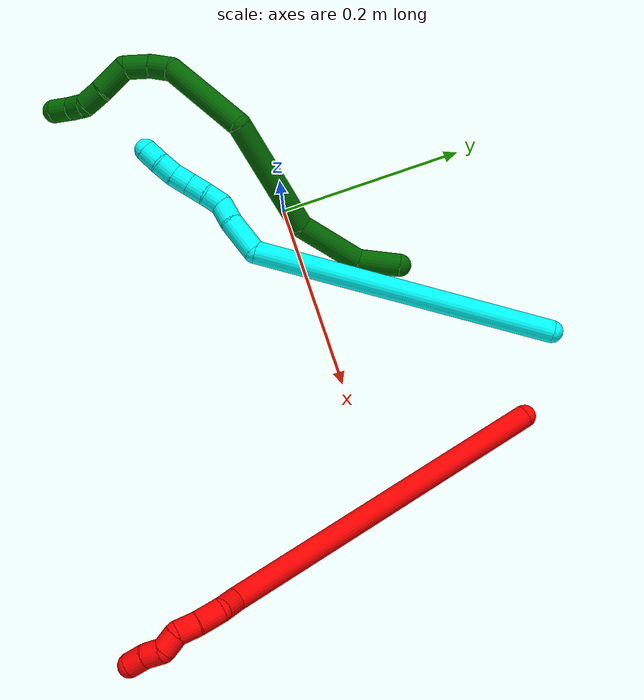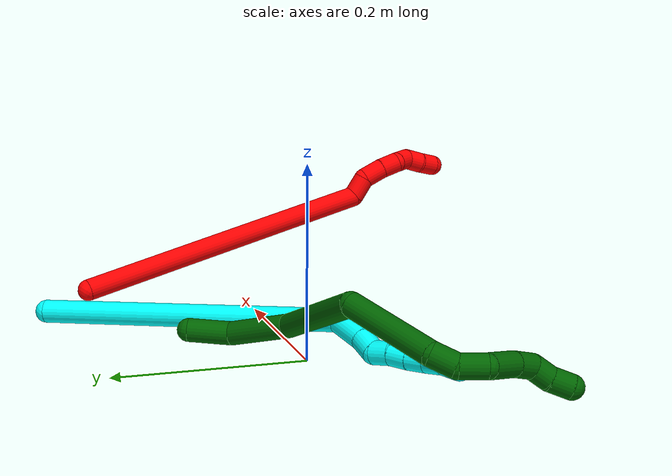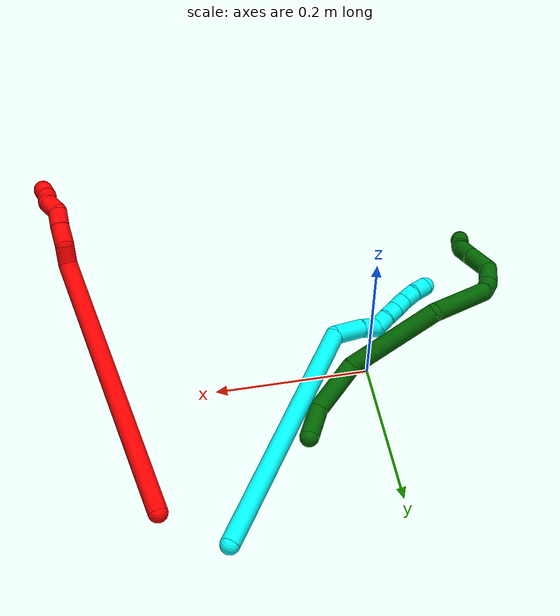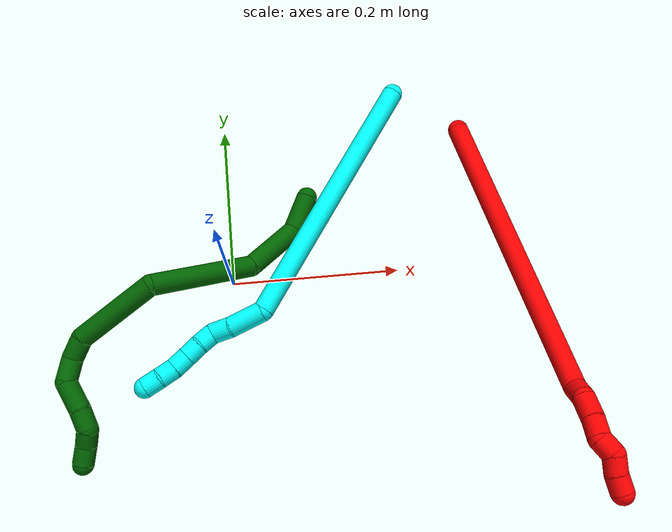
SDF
<sdf version="1.7">
 <world name="default">
  <model name="bin">
   <static>1</static>
   <link name="bottom">
    <collision name="collision-bottom">
     <pose>0 0 -0.01 0 -0 0</pose>
     <geometry><box><size>0.8 0.6 0.02</size></box></geometry>
     <surface>
      <friction><ode><mu>100</mu><mu2>100</mu2></ode></friction>
      <contact><collide_bitmask>65535</collide_bitmask></contact>
     </surface>
    </collision>
   </link>
   <link name="west_wall">
    <collision name="collision-west_wall">
     <pose>-0.41 0 0.1 0 -0 0</pose>
     <geometry><box><size>0.02 0.6 0.2</size></box></geometry>
     <surface>
      <friction><ode><mu>100</mu><mu2>100</mu2></ode></friction>
      <contact><collide_bitmask>65535</collide_bitmask></contact>
     </surface>
    </collision>
   </link>
   <link name="east_wall">
    <collision name="collision-east_wall">
     <pose>0.41 0 0.1 0 -0 0</pose>
     <geometry><box><size>0.02 0.6 0.2</size></box></geometry>
     <surface>
      <friction><ode><mu>100</mu><mu2>100</mu2></ode></friction>
      <contact><collide_bitmask>65535</collide_bitmask></contact>
     </surface>
    </collision>
   </link>
   <link name="south_wall">
    <collision name="collision-south_wall">
     <pose>0 -0.31 0.1 0 -0 0</pose>
     <geometry><box><size>0.8 0.02 0.2</size></box></geometry>
     <surface>
      <friction><ode><mu>100</mu><mu2>100</mu2></ode></friction>
      <contact><collide_bitmask>65535</collide_bitmask></contact>
     </surface>
    </collision>
   </link>
   <link name="north_wall">
    <collision name="collision-north_wall">
     <pose>0 0.31 0.1 0 -0 0</pose>
     <geometry><box><size>0.8 0.02 0.2</size></box></geometry>
     <surface>
      <friction><ode><mu>100</mu><mu2>100</mu2></ode></friction>
      <contact><collide_bitmask>65535</collide_bitmask></contact>
     </surface>
    </collision>
   </link>
  </model>
  <model name="2">
   <static>0</static>
   <link name="2">
    <collision name="collision-cylinder-e_1_1_4">
     <pose>0.073476 -0.110008 0.12536 0.720267 0.414965 0.158208</pose>
     <geometry><cylinder><radius>0.0125</radius><length>0.364503</length></cylinder></geometry>
     <surface>
      <friction><ode><mu>1.16</mu><mu2>1.16</mu2><slip1>0</slip1><slip2>0</slip2></ode></friction>
      <contact><ode><kp>1e+06</kp><kd>1</kd><max_vel>0</max_vel><min_depth>0.001</min_depth></ode></contact>
     </surface>
    </collision>
    <visual name="visual-cylinder-e_1_1_4">
     <pose>0.073476 -0.110008 0.12536 0.720267 0.414965 0.158208</pose>
     <geometry><cylinder><radius>0.0125</radius><length>0.364503</length></cylinder></geometry>
     <material><ambient>1 0 0 1</ambient></material>
    </visual>
    <collision name="collision-cylinder-e_2_4_5">
     <pose>0.147251 -0.220273 0.263848 0.019518 0.022736 0.000222</pose>
     <geometry><cylinder><radius>0.0125</radius><length>0.026268</length></cylinder></geometry>
     <surface>
      <friction><ode><mu>1.16</mu><mu2>1.16</mu2><slip1>0</slip1><slip2>0</slip2></ode></friction>
      <contact><ode><kp>1e+06</kp><kd>1</kd><max_vel>0</max_vel><min_depth>0.001</min_depth></ode></contact>
     </surface>
    </collision>
    <visual name="visual-cylinder-e_2_4_5">
     <pose>0.147251 -0.220273 0.263848 0.019518 0.022736 0.000222</pose>
     <geometry><cylinder><radius>0.0125</radius><length>0.026268</length></cylinder></geometry>
     <material><ambient>1 0 0 1</ambient></material>
    </visual>
    <collision name="collision-cylinder-e_3_5_6">
     <pose>0.151189 -0.227043 0.288011 0.533239 0.276725 0.076029</pose>
     <geometry><cylinder><radius>0.0125</radius><length>0.026641</length></cylinder></geometry>
     <surface>
      <friction><ode><mu>1.16</mu><mu2>1.16</mu2><slip1>0</slip1><slip2>0</slip2></ode></friction>
      <contact><ode><kp>1e+06</kp><kd>1</kd><max_vel>0</max_vel><min_depth>0.001</min_depth></ode></contact>
     </surface>
    </collision>
    <visual name="visual-cylinder-e_3_5_6">
     <pose>0.151189 -0.227043 0.288011 0.533239 0.276725 0.076029</pose>
     <geometry><cylinder><radius>0.0125</radius><length>0.026641</length></cylinder></geometry>
     <material><ambient>1 0 0 1</ambient></material>
    </visual>
    <collision name="collision-cylinder-e_4_6_7">
     <pose>0.157369 -0.240131 0.307593 0.655674 0.231397 0.079012</pose>
     <geometry><cylinder><radius>0.0125</radius><length>0.022159</length></cylinder></geometry>
     <surface>
      <friction><ode><mu>1.16</mu><mu2>1.16</mu2><slip1>0</slip1><slip2>0</slip2></ode></friction>
      <contact><ode><kp>1e+06</kp><kd>1</kd><max_vel>0</max_vel><min_depth>0.001</min_depth></ode></contact>
     </surface>
    </collision>
    <visual name="visual-cylinder-e_4_6_7">
     <pose>0.157369 -0.240131 0.307593 0.655674 0.231397 0.079012</pose>
     <geometry><cylinder><radius>0.0125</radius><length>0.022159</length></cylinder></geometry>
     <material><ambient>1 0 0 1</ambient></material>
    </visual>
    <collision name="collision-cylinder-e_5_7_8">
     <pose>0.167388 -0.251357 0.321259 0.737608 0.824425 0.334831</pose>
     <geometry><cylinder><radius>0.0125</radius><length>0.020371</length></cylinder></geometry>
     <surface>
      <friction><ode><mu>1.16</mu><mu2>1.16</mu2><slip1>0</slip1><slip2>0</slip2></ode></friction>
      <contact><ode><kp>1e+06</kp><kd>1</kd><max_vel>0</max_vel><min_depth>0.001</min_depth></ode></contact>
     </surface>
    </collision>
    <visual name="visual-cylinder-e_5_7_8">
     <pose>0.167388 -0.251357 0.321259 0.737608 0.824425 0.334831</pose>
     <geometry><cylinder><radius>0.0125</radius><length>0.020371</length></cylinder></geometry>
     <material><ambient>1 0 0 1</ambient></material>
    </visual>
    <collision name="collision-cylinder-e_6_8_9">
     <pose>0.178291 -0.26506 0.328903 1.29875 0.349541 0.266524</pose>
     <geometry><cylinder><radius>0.0125</radius><length>0.020005</length></cylinder></geometry>
     <surface>
      <friction><ode><mu>1.16</mu><mu2>1.16</mu2><slip1>0</slip1><slip2>0</slip2></ode></friction>
      <contact><ode><kp>1e+06</kp><kd>1</kd><max_vel>0</max_vel><min_depth>0.001</min_depth></ode></contact>
     </surface>
    </collision>
    <visual name="visual-cylinder-e_6_8_9">
     <pose>0.178291 -0.26506 0.328903 1.29875 0.349541 0.266524</pose>
     <geometry><cylinder><radius>0.0125</radius><length>0.020005</length></cylinder></geometry>
     <material><ambient>1 0 0 1</ambient></material>
    </visual>
    <collision name="collision-cylinder-e_7_9_2">
     <pose>0.186893 -0.282211 0.334281 1.23216 0.542522 0.388841</pose>
     <geometry><cylinder><radius>0.0125</radius><length>0.020053</length></cylinder></geometry>
     <surface>
      <friction><ode><mu>1.16</mu><mu2>1.16</mu2><slip1>0</slip1><slip2>0</slip2></ode></friction>
      <contact><ode><kp>1e+06</kp><kd>1</kd><max_vel>0</max_vel><min_depth>0.001</min_depth></ode></contact>
     </surface>
    </collision>
    <visual name="visual-cylinder-e_7_9_2">
     <pose>0.186893 -0.282211 0.334281 1.23216 0.542522 0.388841</pose>
     <geometry><cylinder><radius>0.0125</radius><length>0.020053</length></cylinder></geometry>
     <material><ambient>1 0 0 1</ambient></material>
    </visual>
    <collision name="collision-sphere-2">
     <pose>0.19207 -0.29031 0.337133 0 -0 0</pose>
     <geometry><sphere><radius>0.0125</radius></sphere></geometry>
     <surface>
      <friction><ode><mu>1.16</mu><mu2>1.16</mu2><slip1>0</slip1><slip2>0</slip2></ode></friction>
      <contact><ode><kp>1e+06</kp><kd>1</kd><max_vel>0</max_vel><min_depth>0.001</min_depth></ode></contact>
     </surface>
    </collision>
    <visual name="visual-sphere-2">
     <pose>0.19207 -0.29031 0.337133 0 -0 0</pose>
     <geometry><sphere><radius>0.0125</radius></sphere></geometry>
     <material><ambient>1 0 0 1</ambient></material>
    </visual>
    <collision name="collision-sphere-9">
     <pose>0.181716 -0.274112 0.331428 0 -0 0</pose>
     <geometry><sphere><radius>0.0125</radius></sphere></geometry>
     <surface>
      <friction><ode><mu>1.16</mu><mu2>1.16</mu2><slip1>0</slip1><slip2>0</slip2></ode></friction>
      <contact><ode><kp>1e+06</kp><kd>1</kd><max_vel>0</max_vel><min_depth>0.001</min_depth></ode></contact>
     </surface>
    </collision>
    <visual name="visual-sphere-9">
     <pose>0.181716 -0.274112 0.331428 0 -0 0</pose>
     <geometry><sphere><radius>0.0125</radius></sphere></geometry>
     <material><ambient>1 0 0 1</ambient></material>
    </visual>
    <collision name="collision-sphere-4">
     <pose>0.146952 -0.220016 0.25072 0 -0 0</pose>
     <geometry><sphere><radius>0.0125</radius></sphere></geometry>
     <surface>
      <friction><ode><mu>1.16</mu><mu2>1.16</mu2><slip1>0</slip1><slip2>0</slip2></ode></friction>
      <contact><ode><kp>1e+06</kp><kd>1</kd><max_vel>0</max_vel><min_depth>0.001</min_depth></ode></contact>
     </surface>
    </collision>
    <visual name="visual-sphere-4">
     <pose>0.146952 -0.220016 0.25072 0 -0 0</pose>
     <geometry><sphere><radius>0.0125</radius></sphere></geometry>
     <material><ambient>1 0 0 1</ambient></material>
    </visual>
    <collision name="collision-sphere-1">
     <geometry><sphere><radius>0.0125</radius></sphere></geometry>
     <surface>
      <friction><ode><mu>1.16</mu><mu2>1.16</mu2><slip1>0</slip1><slip2>0</slip2></ode></friction>
      <contact><ode><kp>1e+06</kp><kd>1</kd><max_vel>0</max_vel><min_depth>0.001</min_depth></ode></contact>
     </surface>
    </collision>
    <visual name="visual-sphere-1">
     <geometry><sphere><radius>0.0125</radius></sphere></geometry>
     <material><ambient>1 0 0 1</ambient></material>
    </visual>
    <collision name="collision-sphere-8">
     <pose>0.174865 -0.256008 0.326378 0 -0 0</pose>
     <geometry><sphere><radius>0.0125</radius></sphere></geometry>
     <surface>
      <friction><ode><mu>1.16</mu><mu2>1.16</mu2><slip1>0</slip1><slip2>0</slip2></ode></friction>
      <contact><ode><kp>1e+06</kp><kd>1</kd><max_vel>0</max_vel><min_depth>0.001</min_depth></ode></contact>
     </surface>
    </collision>
    <visual name="visual-sphere-8">
     <pose>0.174865 -0.256008 0.326378 0 -0 0</pose>
     <geometry><sphere><radius>0.0125</radius></sphere></geometry>
     <material><ambient>1 0 0 1</ambient></material>
    </visual>
    <collision name="collision-sphere-5">
     <pose>0.147549 -0.220529 0.276976 0 -0 0</pose>
     <geometry><sphere><radius>0.0125</radius></sphere></geometry>
     <surface>
      <friction><ode><mu>1.16</mu><mu2>1.16</mu2><slip1>0</slip1><slip2>0</slip2></ode></friction>
      <contact><ode><kp>1e+06</kp><kd>1</kd><max_vel>0</max_vel><min_depth>0.001</min_depth></ode></contact>
     </surface>
    </collision>
    <visual name="visual-sphere-5">
     <pose>0.147549 -0.220529 0.276976 0 -0 0</pose>
     <geometry><sphere><radius>0.0125</radius></sphere></geometry>
     <material><ambient>1 0 0 1</ambient></material>
    </visual>
    <collision name="collision-sphere-6">
     <pose>0.154828 -0.233556 0.299045 0 -0 0</pose>
     <geometry><sphere><radius>0.0125</radius></sphere></geometry>
     <surface>
      <friction><ode><mu>1.16</mu><mu2>1.16</mu2><slip1>0</slip1><slip2>0</slip2></ode></friction>
      <contact><ode><kp>1e+06</kp><kd>1</kd><max_vel>0</max_vel><min_depth>0.001</min_depth></ode></contact>
     </surface>
    </collision>
    <visual name="visual-sphere-6">
     <pose>0.154828 -0.233556 0.299045 0 -0 0</pose>
     <geometry><sphere><radius>0.0125</radius></sphere></geometry>
     <material><ambient>1 0 0 1</ambient></material>
    </visual>
    <collision name="collision-sphere-7">
     <pose>0.15991 -0.246706 0.316141 0 -0 0</pose>
     <geometry><sphere><radius>0.0125</radius></sphere></geometry>
     <surface>
      <friction><ode><mu>1.16</mu><mu2>1.16</mu2><slip1>0</slip1><slip2>0</slip2></ode></friction>
      <contact><ode><kp>1e+06</kp><kd>1</kd><max_vel>0</max_vel><min_depth>0.001</min_depth></ode></contact>
     </surface>
    </collision>
    <visual name="visual-sphere-7">
     <pose>0.15991 -0.246706 0.316141 0 -0 0</pose>
     <geometry><sphere><radius>0.0125</radius></sphere></geometry>
     <material><ambient>1 0 0 1</ambient></material>
    </visual>
    <inertial>
     <pose>0.097779 -0.146672 0.173882 0 -0 0</pose>
     <mass>0.5</mass>
     <inertia>
      <ixx>0.004271</ixx>
      <ixy>0</ixy>
      <ixz>0</ixz>
      <iyy>0.003747</iyy>
      <iyz>0</iyz>
      <izz>0.00084</izz>
     </inertia>
    </inertial>
   </link>
   <pose>0.295709 0.174697 0.011499 0.525077 0.180394 -0.276996</pose>
  </model>
  <model name="3">
   <static>0</static>
   <link name="3">
    <collision name="collision-cylinder-e_1_1_4">
     <pose>-0.098345 -0.110403 -0.075612 2.17129 -0.633792 -1.11301</pose>
     <geometry><cylinder><radius>0.0125</radius><length>0.332131</length></cylinder></geometry>
     <surface>
      <friction><ode><mu>1.16</mu><mu2>1.16</mu2><slip1>0</slip1><slip2>0</slip2></ode></friction>
      <contact><ode><kp>1e+06</kp><kd>1</kd><max_vel>0</max_vel><min_depth>0.001</min_depth></ode></contact>
     </surface>
    </collision>
    <visual name="visual-cylinder-e_1_1_4">
     <pose>-0.098345 -0.110403 -0.075612 2.17129 -0.633792 -1.11301</pose>
     <geometry><cylinder><radius>0.0125</radius><length>0.332131</length></cylinder></geometry>
     <material><ambient>0.003922 1 0.996078 1</ambient></material>
    </visual>
    <collision name="collision-cylinder-e_2_4_5">
     <pose>-0.19767 -0.241809 -0.154843 1.74143 -0.045945 -0.054535</pose>
     <geometry><cylinder><radius>0.0125</radius><length>0.042669</length></cylinder></geometry>
     <surface>
      <friction><ode><mu>1.16</mu><mu2>1.16</mu2><slip1>0</slip1><slip2>0</slip2></ode></friction>
      <contact><ode><kp>1e+06</kp><kd>1</kd><max_vel>0</max_vel><min_depth>0.001</min_depth></ode></contact>
     </surface>
    </collision>
    <visual name="visual-cylinder-e_2_4_5">
     <pose>-0.19767 -0.241809 -0.154843 1.74143 -0.045945 -0.054535</pose>
     <geometry><cylinder><radius>0.0125</radius><length>0.042669</length></cylinder></geometry>
     <material><ambient>0.003922 1 0.996078 1</ambient></material>
    </visual>
    <collision name="collision-cylinder-e_3_5_6">
     <pose>-0.197643 -0.275086 -0.159163 1.62793 0.081686 0.086485</pose>
     <geometry><cylinder><radius>0.0125</radius><length>0.024671</length></cylinder></geometry>
     <surface>
      <friction><ode><mu>1.16</mu><mu2>1.16</mu2><slip1>0</slip1><slip2>0</slip2></ode></friction>
      <contact><ode><kp>1e+06</kp><kd>1</kd><max_vel>0</max_vel><min_depth>0.001</min_depth></ode></contact>
     </surface>
    </collision>
    <visual name="visual-cylinder-e_3_5_6">
     <pose>-0.197643 -0.275086 -0.159163 1.62793 0.081686 0.086485</pose>
     <geometry><cylinder><radius>0.0125</radius><length>0.024671</length></cylinder></geometry>
     <material><ambient>0.003922 1 0.996078 1</ambient></material>
    </visual>
    <collision name="collision-cylinder-e_4_6_7">
     <pose>-0.199799 -0.295397 -0.165316 2.16674 -0.314806 -0.581837</pose>
     <geometry><cylinder><radius>0.0125</radius><length>0.020426</length></cylinder></geometry>
     <surface>
      <friction><ode><mu>1.16</mu><mu2>1.16</mu2><slip1>0</slip1><slip2>0</slip2></ode></friction>
      <contact><ode><kp>1e+06</kp><kd>1</kd><max_vel>0</max_vel><min_depth>0.001</min_depth></ode></contact>
     </surface>
    </collision>
    <visual name="visual-cylinder-e_4_6_7">
     <pose>-0.199799 -0.295397 -0.165316 2.16674 -0.314806 -0.581837</pose>
     <geometry><cylinder><radius>0.0125</radius><length>0.020426</length></cylinder></geometry>
     <material><ambient>0.003922 1 0.996078 1</ambient></material>
    </visual>
    <collision name="collision-cylinder-e_5_7_8">
     <pose>-0.206585 -0.31198 -0.174547 1.9873 -0.369921 -0.559638</pose>
     <geometry><cylinder><radius>0.0125</radius><length>0.020046</length></cylinder></geometry>
     <surface>
      <friction><ode><mu>1.16</mu><mu2>1.16</mu2><slip1>0</slip1><slip2>0</slip2></ode></friction>
      <contact><ode><kp>1e+06</kp><kd>1</kd><max_vel>0</max_vel><min_depth>0.001</min_depth></ode></contact>
     </surface>
    </collision>
    <visual name="visual-cylinder-e_5_7_8">
     <pose>-0.206585 -0.31198 -0.174547 1.9873 -0.369921 -0.559638</pose>
     <geometry><cylinder><radius>0.0125</radius><length>0.020046</length></cylinder></geometry>
     <material><ambient>0.003922 1 0.996078 1</ambient></material>
    </visual>
    <collision name="collision-cylinder-e_6_8_9">
     <pose>-0.213742 -0.328763 -0.182777 2.06603 -0.36097 -0.593804</pose>
     <geometry><cylinder><radius>0.0125</radius><length>0.020012</length></cylinder></geometry>
     <surface>
      <friction><ode><mu>1.16</mu><mu2>1.16</mu2><slip1>0</slip1><slip2>0</slip2></ode></friction>
      <contact><ode><kp>1e+06</kp><kd>1</kd><max_vel>0</max_vel><min_depth>0.001</min_depth></ode></contact>
     </surface>
    </collision>
    <visual name="visual-cylinder-e_6_8_9">
     <pose>-0.213742 -0.328763 -0.182777 2.06603 -0.36097 -0.593804</pose>
     <geometry><cylinder><radius>0.0125</radius><length>0.020012</length></cylinder></geometry>
     <material><ambient>0.003922 1 0.996078 1</ambient></material>
    </visual>
    <collision name="collision-cylinder-e_7_9_10">
     <pose>-0.219232 -0.345315 -0.192442 2.13104 -0.196633 -0.352905</pose>
     <geometry><cylinder><radius>0.0125</radius><length>0.020017</length></cylinder></geometry>
     <surface>
      <friction><ode><mu>1.16</mu><mu2>1.16</mu2><slip1>0</slip1><slip2>0</slip2></ode></friction>
      <contact><ode><kp>1e+06</kp><kd>1</kd><max_vel>0</max_vel><min_depth>0.001</min_depth></ode></contact>
     </surface>
    </collision>
    <visual name="visual-cylinder-e_7_9_10">
     <pose>-0.219232 -0.345315 -0.192442 2.13104 -0.196633 -0.352905</pose>
     <geometry><cylinder><radius>0.0125</radius><length>0.020017</length></cylinder></geometry>
     <material><ambient>0.003922 1 0.996078 1</ambient></material>
    </visual>
    <collision name="collision-cylinder-e_8_10_2">
     <pose>-0.222865 -0.362826 -0.201248 1.94301 -0.168341 -0.245776</pose>
     <geometry><cylinder><radius>0.0125</radius><length>0.020028</length></cylinder></geometry>
     <surface>
      <friction><ode><mu>1.16</mu><mu2>1.16</mu2><slip1>0</slip1><slip2>0</slip2></ode></friction>
      <contact><ode><kp>1e+06</kp><kd>1</kd><max_vel>0</max_vel><min_depth>0.001</min_depth></ode></contact>
     </surface>
    </collision>
    <visual name="visual-cylinder-e_8_10_2">
     <pose>-0.222865 -0.362826 -0.201248 1.94301 -0.168341 -0.245776</pose>
     <geometry><cylinder><radius>0.0125</radius><length>0.020028</length></cylinder></geometry>
     <material><ambient>0.003922 1 0.996078 1</ambient></material>
    </visual>
    <collision name="collision-sphere-2">
     <pose>-0.224543 -0.372023 -0.204838 0 -0 0</pose>
     <geometry><sphere><radius>0.0125</radius></sphere></geometry>
     <surface>
      <friction><ode><mu>1.16</mu><mu2>1.16</mu2><slip1>0</slip1><slip2>0</slip2></ode></friction>
      <contact><ode><kp>1e+06</kp><kd>1</kd><max_vel>0</max_vel><min_depth>0.001</min_depth></ode></contact>
     </surface>
    </collision>
    <visual name="visual-sphere-2">
     <pose>-0.224543 -0.372023 -0.204838 0 -0 0</pose>
     <geometry><sphere><radius>0.0125</radius></sphere></geometry>
     <material><ambient>0.003922 1 0.996078 1</ambient></material>
    </visual>
    <collision name="collision-sphere-10">
     <pose>-0.221187 -0.35363 -0.197658 0 -0 0</pose>
     <geometry><sphere><radius>0.0125</radius></sphere></geometry>
     <surface>
      <friction><ode><mu>1.16</mu><mu2>1.16</mu2><slip1>0</slip1><slip2>0</slip2></ode></friction>
      <contact><ode><kp>1e+06</kp><kd>1</kd><max_vel>0</max_vel><min_depth>0.001</min_depth></ode></contact>
     </surface>
    </collision>
    <visual name="visual-sphere-10">
     <pose>-0.221187 -0.35363 -0.197658 0 -0 0</pose>
     <geometry><sphere><radius>0.0125</radius></sphere></geometry>
     <material><ambient>0.003922 1 0.996078 1</ambient></material>
    </visual>
    <collision name="collision-sphere-9">
     <pose>-0.217276 -0.337 -0.187226 0 -0 0</pose>
     <geometry><sphere><radius>0.0125</radius></sphere></geometry>
     <surface>
      <friction><ode><mu>1.16</mu><mu2>1.16</mu2><slip1>0</slip1><slip2>0</slip2></ode></friction>
      <contact><ode><kp>1e+06</kp><kd>1</kd><max_vel>0</max_vel><min_depth>0.001</min_depth></ode></contact>
     </surface>
    </collision>
    <visual name="visual-sphere-9">
     <pose>-0.217276 -0.337 -0.187226 0 -0 0</pose>
     <geometry><sphere><radius>0.0125</radius></sphere></geometry>
     <material><ambient>0.003922 1 0.996078 1</ambient></material>
    </visual>
    <collision name="collision-sphere-4">
     <pose>-0.19669 -0.220807 -0.151224 0 -0 0</pose>
     <geometry><sphere><radius>0.0125</radius></sphere></geometry>
     <surface>
      <friction><ode><mu>1.16</mu><mu2>1.16</mu2><slip1>0</slip1><slip2>0</slip2></ode></friction>
      <contact><ode><kp>1e+06</kp><kd>1</kd><max_vel>0</max_vel><min_depth>0.001</min_depth></ode></contact>
     </surface>
    </collision>
    <visual name="visual-sphere-4">
     <pose>-0.19669 -0.220807 -0.151224 0 -0 0</pose>
     <geometry><sphere><radius>0.0125</radius></sphere></geometry>
     <material><ambient>0.003922 1 0.996078 1</ambient></material>
    </visual>
    <collision name="collision-sphere-1">
     <geometry><sphere><radius>0.0125</radius></sphere></geometry>
     <surface>
      <friction><ode><mu>1.16</mu><mu2>1.16</mu2><slip1>0</slip1><slip2>0</slip2></ode></friction>
      <contact><ode><kp>1e+06</kp><kd>1</kd><max_vel>0</max_vel><min_depth>0.001</min_depth></ode></contact>
     </surface>
    </collision>
    <visual name="visual-sphere-1">
     <geometry><sphere><radius>0.0125</radius></sphere></geometry>
     <material><ambient>0.003922 1 0.996078 1</ambient></material>
    </visual>
    <collision name="collision-sphere-8">
     <pose>-0.210208 -0.320526 -0.178328 0 -0 0</pose>
     <geometry><sphere><radius>0.0125</radius></sphere></geometry>
     <surface>
      <friction><ode><mu>1.16</mu><mu2>1.16</mu2><slip1>0</slip1><slip2>0</slip2></ode></friction>
      <contact><ode><kp>1e+06</kp><kd>1</kd><max_vel>0</max_vel><min_depth>0.001</min_depth></ode></contact>
     </surface>
    </collision>
    <visual name="visual-sphere-8">
     <pose>-0.210208 -0.320526 -0.178328 0 -0 0</pose>
     <geometry><sphere><radius>0.0125</radius></sphere></geometry>
     <material><ambient>0.003922 1 0.996078 1</ambient></material>
    </visual>
    <collision name="collision-sphere-5">
     <pose>-0.19865 -0.262812 -0.158461 0 -0 0</pose>
     <geometry><sphere><radius>0.0125</radius></sphere></geometry>
     <surface>
      <friction><ode><mu>1.16</mu><mu2>1.16</mu2><slip1>0</slip1><slip2>0</slip2></ode></friction>
      <contact><ode><kp>1e+06</kp><kd>1</kd><max_vel>0</max_vel><min_depth>0.001</min_depth></ode></contact>
     </surface>
    </collision>
    <visual name="visual-sphere-5">
     <pose>-0.19865 -0.262812 -0.158461 0 -0 0</pose>
     <geometry><sphere><radius>0.0125</radius></sphere></geometry>
     <material><ambient>0.003922 1 0.996078 1</ambient></material>
    </visual>
    <collision name="collision-sphere-6">
     <pose>-0.196636 -0.28736 -0.159865 0 -0 0</pose>
     <geometry><sphere><radius>0.0125</radius></sphere></geometry>
     <surface>
      <friction><ode><mu>1.16</mu><mu2>1.16</mu2><slip1>0</slip1><slip2>0</slip2></ode></friction>
      <contact><ode><kp>1e+06</kp><kd>1</kd><max_vel>0</max_vel><min_depth>0.001</min_depth></ode></contact>
     </surface>
    </collision>
    <visual name="visual-sphere-6">
     <pose>-0.196636 -0.28736 -0.159865 0 -0 0</pose>
     <geometry><sphere><radius>0.0125</radius></sphere></geometry>
     <material><ambient>0.003922 1 0.996078 1</ambient></material>
    </visual>
    <collision name="collision-sphere-7">
     <pose>-0.202961 -0.303434 -0.170767 0 -0 0</pose>
     <geometry><sphere><radius>0.0125</radius></sphere></geometry>
     <surface>
      <friction><ode><mu>1.16</mu><mu2>1.16</mu2><slip1>0</slip1><slip2>0</slip2></ode></friction>
      <contact><ode><kp>1e+06</kp><kd>1</kd><max_vel>0</max_vel><min_depth>0.001</min_depth></ode></contact>
     </surface>
    </collision>
    <visual name="visual-sphere-7">
     <pose>-0.202961 -0.303434 -0.170767 0 -0 0</pose>
     <geometry><sphere><radius>0.0125</radius></sphere></geometry>
     <material><ambient>0.003922 1 0.996078 1</ambient></material>
    </visual>
    <inertial>
     <pose>-0.134651 -0.173637 -0.108126 0 -0 0</pose>
     <mass>0.5</mass>
     <inertia>
      <ixx>-0.001129</ixx>
      <ixy>0</ixy>
      <ixz>0</ixz>
      <iyy>-0.001674</iyy>
      <iyz>0</iyz>
      <izz>0.003857</izz>
     </inertia>
    </inertial>
   </link>
   <pose>0.218167 0.232363 0.011498 2.73946 -0.174403 1.89766</pose>
  </model>
  <model name="6">
   <static>0</static>
   <link name="6">
    <collision name="collision-cylinder-e_1_1_4">
     <pose>-0.000566 0.003741 0.022543 -0.164467 -0.024784 0.002043</pose>
     <geometry><cylinder><radius>0.0125</radius><length>0.045716</length></cylinder></geometry>
     <surface>
      <friction><ode><mu>1.16</mu><mu2>1.16</mu2><slip1>0</slip1><slip2>0</slip2></ode></friction>
      <contact><ode><kp>1e+06</kp><kd>1</kd><max_vel>0</max_vel><min_depth>0.001</min_depth></ode></contact>
     </surface>
    </collision>
    <visual name="visual-cylinder-e_1_1_4">
     <pose>-0.000566 0.003741 0.022543 -0.164467 -0.024784 0.002043</pose>
     <geometry><cylinder><radius>0.0125</radius><length>0.045716</length></cylinder></geometry>
     <material><ambient>0 0.392157 0.003922 1</ambient></material>
    </visual>
    <collision name="collision-cylinder-e_2_4_5">
     <pose>-0.016485 0.003581 0.077812 0.118645 -0.435926 -0.026307</pose>
     <geometry><cylinder><radius>0.0125</radius><length>0.072718</length></cylinder></geometry>
     <surface>
      <friction><ode><mu>1.16</mu><mu2>1.16</mu2><slip1>0</slip1><slip2>0</slip2></ode></friction>
      <contact><ode><kp>1e+06</kp><kd>1</kd><max_vel>0</max_vel><min_depth>0.001</min_depth></ode></contact>
     </surface>
    </collision>
    <visual name="visual-cylinder-e_2_4_5">
     <pose>-0.016485 0.003581 0.077812 0.118645 -0.435926 -0.026307</pose>
     <geometry><cylinder><radius>0.0125</radius><length>0.072718</length></cylinder></geometry>
     <material><ambient>0 0.392157 0.003922 1</ambient></material>
    </visual>
    <collision name="collision-cylinder-e_3_5_6">
     <pose>-0.072323 -0.026922 0.150531 0.586981 -0.700354 -0.219868</pose>
     <geometry><cylinder><radius>0.0125</radius><length>0.125634</length></cylinder></geometry>
     <surface>
      <friction><ode><mu>1.16</mu><mu2>1.16</mu2><slip1>0</slip1><slip2>0</slip2></ode></friction>
      <contact><ode><kp>1e+06</kp><kd>1</kd><max_vel>0</max_vel><min_depth>0.001</min_depth></ode></contact>
     </surface>
    </collision>
    <visual name="visual-cylinder-e_3_5_6">
     <pose>-0.072323 -0.026922 0.150531 0.586981 -0.700354 -0.219868</pose>
     <geometry><cylinder><radius>0.0125</radius><length>0.125634</length></cylinder></geometry>
     <material><ambient>0 0.392157 0.003922 1</ambient></material>
    </visual>
    <collision name="collision-cylinder-e_4_6_7">
     <pose>-0.111375 -0.076664 0.234999 0.479732 0.028583 0.006991</pose>
     <geometry><cylinder><radius>0.0125</radius><length>0.100314</length></cylinder></geometry>
     <surface>
      <friction><ode><mu>1.16</mu><mu2>1.16</mu2><slip1>0</slip1><slip2>0</slip2></ode></friction>
      <contact><ode><kp>1e+06</kp><kd>1</kd><max_vel>0</max_vel><min_depth>0.001</min_depth></ode></contact>
     </surface>
    </collision>
    <visual name="visual-cylinder-e_4_6_7">
     <pose>-0.111375 -0.076664 0.234999 0.479732 0.028583 0.006991</pose>
     <geometry><cylinder><radius>0.0125</radius><length>0.100314</length></cylinder></geometry>
     <material><ambient>0 0.392157 0.003922 1</ambient></material>
    </visual>
    <collision name="collision-cylinder-e_5_7_8">
     <pose>-0.106643 -0.100675 0.292166 0.068507 0.253685 0.00874</pose>
     <geometry><cylinder><radius>0.0125</radius><length>0.026281</length></cylinder></geometry>
     <surface>
      <friction><ode><mu>1.16</mu><mu2>1.16</mu2><slip1>0</slip1><slip2>0</slip2></ode></friction>
      <contact><ode><kp>1e+06</kp><kd>1</kd><max_vel>0</max_vel><min_depth>0.001</min_depth></ode></contact>
     </surface>
    </collision>
    <visual name="visual-cylinder-e_5_7_8">
     <pose>-0.106643 -0.100675 0.292166 0.068507 0.253685 0.00874</pose>
     <geometry><cylinder><radius>0.0125</radius><length>0.026281</length></cylinder></geometry>
     <material><ambient>0 0.392157 0.003922 1</ambient></material>
    </visual>
    <collision name="collision-cylinder-e_6_8_9">
     <pose>-0.103244 -0.096932 0.317957 -0.338567 0.007287 -0.001245</pose>
     <geometry><cylinder><radius>0.0125</radius><length>0.027779</length></cylinder></geometry>
     <surface>
      <friction><ode><mu>1.16</mu><mu2>1.16</mu2><slip1>0</slip1><slip2>0</slip2></ode></friction>
      <contact><ode><kp>1e+06</kp><kd>1</kd><max_vel>0</max_vel><min_depth>0.001</min_depth></ode></contact>
     </surface>
    </collision>
    <visual name="visual-cylinder-e_6_8_9">
     <pose>-0.103244 -0.096932 0.317957 -0.338567 0.007287 -0.001245</pose>
     <geometry><cylinder><radius>0.0125</radius><length>0.027779</length></cylinder></geometry>
     <material><ambient>0 0.392157 0.003922 1</ambient></material>
    </visual>
    <collision name="collision-cylinder-e_7_9_10">
     <pose>-0.097002 -0.078976 0.340334 -0.963283 0.361294 -0.190353</pose>
     <geometry><cylinder><radius>0.0125</radius><length>0.034746</length></cylinder></geometry>
     <surface>
      <friction><ode><mu>1.16</mu><mu2>1.16</mu2><slip1>0</slip1><slip2>0</slip2></ode></friction>
      <contact><ode><kp>1e+06</kp><kd>1</kd><max_vel>0</max_vel><min_depth>0.001</min_depth></ode></contact>
     </surface>
    </collision>
    <visual name="visual-cylinder-e_7_9_10">
     <pose>-0.097002 -0.078976 0.340334 -0.963283 0.361294 -0.190353</pose>
     <geometry><cylinder><radius>0.0125</radius><length>0.034746</length></cylinder></geometry>
     <material><ambient>0 0.392157 0.003922 1</ambient></material>
    </visual>
    <collision name="collision-cylinder-e_8_10_11">
     <pose>-0.085725 -0.05783 0.357101 -0.80581 0.443356 -0.191538</pose>
     <geometry><cylinder><radius>0.0125</radius><length>0.023946</length></cylinder></geometry>
     <surface>
      <friction><ode><mu>1.16</mu><mu2>1.16</mu2><slip1>0</slip1><slip2>0</slip2></ode></friction>
      <contact><ode><kp>1e+06</kp><kd>1</kd><max_vel>0</max_vel><min_depth>0.001</min_depth></ode></contact>
     </surface>
    </collision>
    <visual name="visual-cylinder-e_8_10_11">
     <pose>-0.085725 -0.05783 0.357101 -0.80581 0.443356 -0.191538</pose>
     <geometry><cylinder><radius>0.0125</radius><length>0.023946</length></cylinder></geometry>
     <material><ambient>0 0.392157 0.003922 1</ambient></material>
    </visual>
    <collision name="collision-cylinder-e_9_11_12">
     <pose>-0.075017 -0.049372 0.373126 -0.076696 0.576929 -0.022769</pose>
     <geometry><cylinder><radius>0.0125</radius><length>0.020427</length></cylinder></geometry>
     <surface>
      <friction><ode><mu>1.16</mu><mu2>1.16</mu2><slip1>0</slip1><slip2>0</slip2></ode></friction>
      <contact><ode><kp>1e+06</kp><kd>1</kd><max_vel>0</max_vel><min_depth>0.001</min_depth></ode></contact>
     </surface>
    </collision>
    <visual name="visual-cylinder-e_9_11_12">
     <pose>-0.075017 -0.049372 0.373126 -0.076696 0.576929 -0.022769</pose>
     <geometry><cylinder><radius>0.0125</radius><length>0.020427</length></cylinder></geometry>
     <material><ambient>0 0.392157 0.003922 1</ambient></material>
    </visual>
    <collision name="collision-cylinder-e_10_12_2">
     <pose>-0.065591 -0.046541 0.391971 -0.207958 0.350746 -0.036978</pose>
     <geometry><cylinder><radius>0.0125</radius><length>0.022438</length></cylinder></geometry>
     <surface>
      <friction><ode><mu>1.16</mu><mu2>1.16</mu2><slip1>0</slip1><slip2>0</slip2></ode></friction>
      <contact><ode><kp>1e+06</kp><kd>1</kd><max_vel>0</max_vel><min_depth>0.001</min_depth></ode></contact>
     </surface>
    </collision>
    <visual name="visual-cylinder-e_10_12_2">
     <pose>-0.065591 -0.046541 0.391971 -0.207958 0.350746 -0.036978</pose>
     <geometry><cylinder><radius>0.0125</radius><length>0.022438</length></cylinder></geometry>
     <material><ambient>0 0.392157 0.003922 1</ambient></material>
    </visual>
    <collision name="collision-sphere-2">
     <pose>-0.061737 -0.044366 0.40228 0 -0 0</pose>
     <geometry><sphere><radius>0.0125</radius></sphere></geometry>
     <surface>
      <friction><ode><mu>1.16</mu><mu2>1.16</mu2><slip1>0</slip1><slip2>0</slip2></ode></friction>
      <contact><ode><kp>1e+06</kp><kd>1</kd><max_vel>0</max_vel><min_depth>0.001</min_depth></ode></contact>
     </surface>
    </collision>
    <visual name="visual-sphere-2">
     <pose>-0.061737 -0.044366 0.40228 0 -0 0</pose>
     <geometry><sphere><radius>0.0125</radius></sphere></geometry>
     <material><ambient>0 0.392157 0.003922 1</ambient></material>
    </visual>
    <collision name="collision-sphere-12">
     <pose>-0.069446 -0.048716 0.381662 0 -0 0</pose>
     <geometry><sphere><radius>0.0125</radius></sphere></geometry>
     <surface>
      <friction><ode><mu>1.16</mu><mu2>1.16</mu2><slip1>0</slip1><slip2>0</slip2></ode></friction>
      <contact><ode><kp>1e+06</kp><kd>1</kd><max_vel>0</max_vel><min_depth>0.001</min_depth></ode></contact>
     </surface>
    </collision>
    <visual name="visual-sphere-12">
     <pose>-0.069446 -0.048716 0.381662 0 -0 0</pose>
     <geometry><sphere><radius>0.0125</radius></sphere></geometry>
     <material><ambient>0 0.392157 0.003922 1</ambient></material>
    </visual>
    <collision name="collision-sphere-11">
     <pose>-0.080588 -0.050028 0.364591 0 -0 0</pose>
     <geometry><sphere><radius>0.0125</radius></sphere></geometry>
     <surface>
      <friction><ode><mu>1.16</mu><mu2>1.16</mu2><slip1>0</slip1><slip2>0</slip2></ode></friction>
      <contact><ode><kp>1e+06</kp><kd>1</kd><max_vel>0</max_vel><min_depth>0.001</min_depth></ode></contact>
     </surface>
    </collision>
    <visual name="visual-sphere-11">
     <pose>-0.080588 -0.050028 0.364591 0 -0 0</pose>
     <geometry><sphere><radius>0.0125</radius></sphere></geometry>
     <material><ambient>0 0.392157 0.003922 1</ambient></material>
    </visual>
    <collision name="collision-sphere-10">
     <pose>-0.090861 -0.065632 0.349611 0 -0 0</pose>
     <geometry><sphere><radius>0.0125</radius></sphere></geometry>
     <surface>
      <friction><ode><mu>1.16</mu><mu2>1.16</mu2><slip1>0</slip1><slip2>0</slip2></ode></friction>
      <contact><ode><kp>1e+06</kp><kd>1</kd><max_vel>0</max_vel><min_depth>0.001</min_depth></ode></contact>
     </surface>
    </collision>
    <visual name="visual-sphere-10">
     <pose>-0.090861 -0.065632 0.349611 0 -0 0</pose>
     <geometry><sphere><radius>0.0125</radius></sphere></geometry>
     <material><ambient>0 0.392157 0.003922 1</ambient></material>
    </visual>
    <collision name="collision-sphere-9">
     <pose>-0.103143 -0.092319 0.331058 0 -0 0</pose>
     <geometry><sphere><radius>0.0125</radius></sphere></geometry>
     <surface>
      <friction><ode><mu>1.16</mu><mu2>1.16</mu2><slip1>0</slip1><slip2>0</slip2></ode></friction>
      <contact><ode><kp>1e+06</kp><kd>1</kd><max_vel>0</max_vel><min_depth>0.001</min_depth></ode></contact>
     </surface>
    </collision>
    <visual name="visual-sphere-9">
     <pose>-0.103143 -0.092319 0.331058 0 -0 0</pose>
     <geometry><sphere><radius>0.0125</radius></sphere></geometry>
     <material><ambient>0 0.392157 0.003922 1</ambient></material>
    </visual>
    <collision name="collision-sphere-4">
     <pose>-0.001133 0.007483 0.045085 0 -0 0</pose>
     <geometry><sphere><radius>0.0125</radius></sphere></geometry>
     <surface>
      <friction><ode><mu>1.16</mu><mu2>1.16</mu2><slip1>0</slip1><slip2>0</slip2></ode></friction>
      <contact><ode><kp>1e+06</kp><kd>1</kd><max_vel>0</max_vel><min_depth>0.001</min_depth></ode></contact>
     </surface>
    </collision>
    <visual name="visual-sphere-4">
     <pose>-0.001133 0.007483 0.045085 0 -0 0</pose>
     <geometry><sphere><radius>0.0125</radius></sphere></geometry>
     <material><ambient>0 0.392157 0.003922 1</ambient></material>
    </visual>
    <collision name="collision-sphere-1">
     <geometry><sphere><radius>0.0125</radius></sphere></geometry>
     <surface>
      <friction><ode><mu>1.16</mu><mu2>1.16</mu2><slip1>0</slip1><slip2>0</slip2></ode></friction>
      <contact><ode><kp>1e+06</kp><kd>1</kd><max_vel>0</max_vel><min_depth>0.001</min_depth></ode></contact>
     </surface>
    </collision>
    <visual name="visual-sphere-1">
     <geometry><sphere><radius>0.0125</radius></sphere></geometry>
     <material><ambient>0 0.392157 0.003922 1</ambient></material>
    </visual>
    <collision name="collision-sphere-8">
     <pose>-0.103345 -0.101545 0.304857 0 -0 0</pose>
     <geometry><sphere><radius>0.0125</radius></sphere></geometry>
     <surface>
      <friction><ode><mu>1.16</mu><mu2>1.16</mu2><slip1>0</slip1><slip2>0</slip2></ode></friction>
      <contact><ode><kp>1e+06</kp><kd>1</kd><max_vel>0</max_vel><min_depth>0.001</min_depth></ode></contact>
     </surface>
    </collision>
    <visual name="visual-sphere-8">
     <pose>-0.103345 -0.101545 0.304857 0 -0 0</pose>
     <geometry><sphere><radius>0.0125</radius></sphere></geometry>
     <material><ambient>0 0.392157 0.003922 1</ambient></material>
    </visual>
    <collision name="collision-sphere-5">
     <pose>-0.031838 -0.00032 0.110539 0 -0 0</pose>
     <geometry><sphere><radius>0.0125</radius></sphere></geometry>
     <surface>
      <friction><ode><mu>1.16</mu><mu2>1.16</mu2><slip1>0</slip1><slip2>0</slip2></ode></friction>
      <contact><ode><kp>1e+06</kp><kd>1</kd><max_vel>0</max_vel><min_depth>0.001</min_depth></ode></contact>
     </surface>
    </collision>
    <visual name="visual-sphere-5">
     <pose>-0.031838 -0.00032 0.110539 0 -0 0</pose>
     <geometry><sphere><radius>0.0125</radius></sphere></geometry>
     <material><ambient>0 0.392157 0.003922 1</ambient></material>
    </visual>
    <collision name="collision-sphere-6">
     <pose>-0.112808 -0.053524 0.190522 0 -0 0</pose>
     <geometry><sphere><radius>0.0125</radius></sphere></geometry>
     <surface>
      <friction><ode><mu>1.16</mu><mu2>1.16</mu2><slip1>0</slip1><slip2>0</slip2></ode></friction>
      <contact><ode><kp>1e+06</kp><kd>1</kd><max_vel>0</max_vel><min_depth>0.001</min_depth></ode></contact>
     </surface>
    </collision>
    <visual name="visual-sphere-6">
     <pose>-0.112808 -0.053524 0.190522 0 -0 0</pose>
     <geometry><sphere><radius>0.0125</radius></sphere></geometry>
     <material><ambient>0 0.392157 0.003922 1</ambient></material>
    </visual>
    <collision name="collision-sphere-7">
     <pose>-0.109941 -0.099804 0.279476 0 -0 0</pose>
     <geometry><sphere><radius>0.0125</radius></sphere></geometry>
     <surface>
      <friction><ode><mu>1.16</mu><mu2>1.16</mu2><slip1>0</slip1><slip2>0</slip2></ode></friction>
      <contact><ode><kp>1e+06</kp><kd>1</kd><max_vel>0</max_vel><min_depth>0.001</min_depth></ode></contact>
     </surface>
    </collision>
    <visual name="visual-sphere-7">
     <pose>-0.109941 -0.099804 0.279476 0 -0 0</pose>
     <geometry><sphere><radius>0.0125</radius></sphere></geometry>
     <material><ambient>0 0.392157 0.003922 1</ambient></material>
    </visual>
    <inertial>
     <pose>-0.071163 -0.044323 0.204958 0 -0 0</pose>
     <mass>0.5</mass>
     <inertia>
      <ixx>0.000236</ixx>
      <ixy>0</ixy>
      <ixz>0</ixz>
      <iyy>0.000254</iyy>
      <iyz>0</iyz>
      <izz>0.000257</izz>
     </inertia>
    </inertial>
   </link>
   <pose>0.097308 0.099529 0.013044 1.90369 1.22227 -0.281968</pose>
  </model>
 </world>
</sdf>
